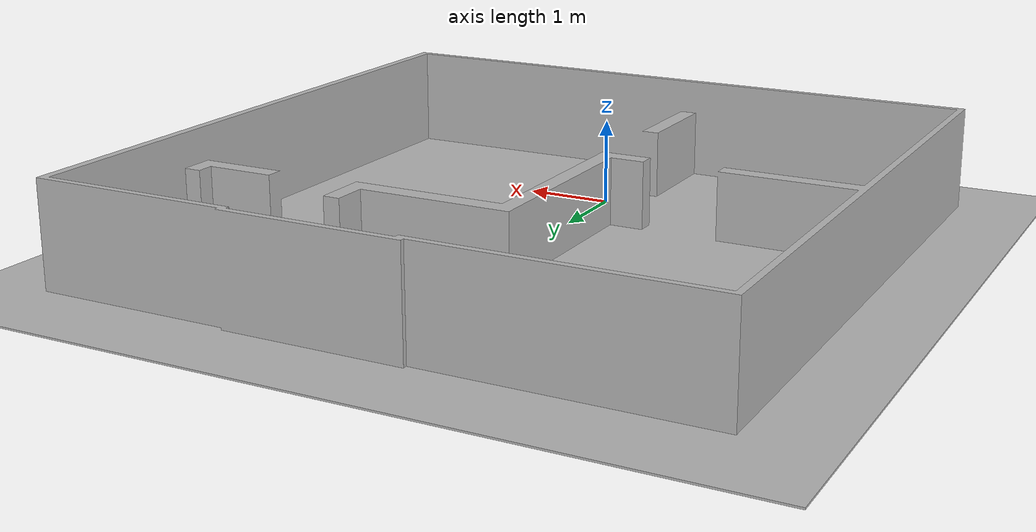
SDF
<?xml version="1.0" ?>
<sdf version="1.6">
  <world name="robot-lab">
    <light name="sun" type="directional">
      <direction>0.5 0.1 -0.9</direction>
      <pose>0 0 10 0 0 0</pose>
      <specular>0.2 0.2 0.2 1</specular>
      <cast_shadows>true</cast_shadows>
      <diffuse>0.8 0.8 0.8 1</diffuse>
      <attenuation>
        <range>1000</range>
        <quadratic>0.001</quadratic>
        <constant>0.9</constant>
        <linear>0.01</linear>
      </attenuation>
    </light>
    <model name="walls">
    <static>true</static>
      <link name="1_link">
        <collision name="1_col">
        <geometry>
          <mesh>
          <uri>model://robot-lab/shape/heightmap.stl</uri>
          </mesh>
        </geometry>
        </collision>
        <visual name="1_vis">
        <geometry>
          <mesh>
          <uri>model://robot-lab/shape/heightmap.stl</uri>
          </mesh>
        </geometry>
        </visual>
        <pose>0 0 0 0 0 0</pose>
      </link>
      <pose>0 0 0 0 0 0</pose>
    </model>
    <model name="floor">
      <link name="1_link">
        <collision name="1_col">
          <geometry>
            <box>
              <size>200 200 0.02</size>
            </box>
          </geometry>
        </collision>
        <visual name="1_vis">
          <geometry>
            <box>
              <size>200 200 0.02</size>
            </box>
          </geometry>
        </visual>
        <pose>0 0 -0.01 0 0 0</pose>
      </link>
      <static>true</static>
      <pose>0 0 0 0 0 0</pose>
    </model>
    <physics type="ode">
      <real_time_update_rate>333.0</real_time_update_rate>
      <max_step_size>0.003</max_step_size>
      <ode>
        <constraints>
          <cfm>0.0001</cfm>
        </constraints>
        <solver>
          <type>quick</type>
          <iters>100</iters>
        </solver>
      </ode>
    </physics>
  </world>
</sdf>
